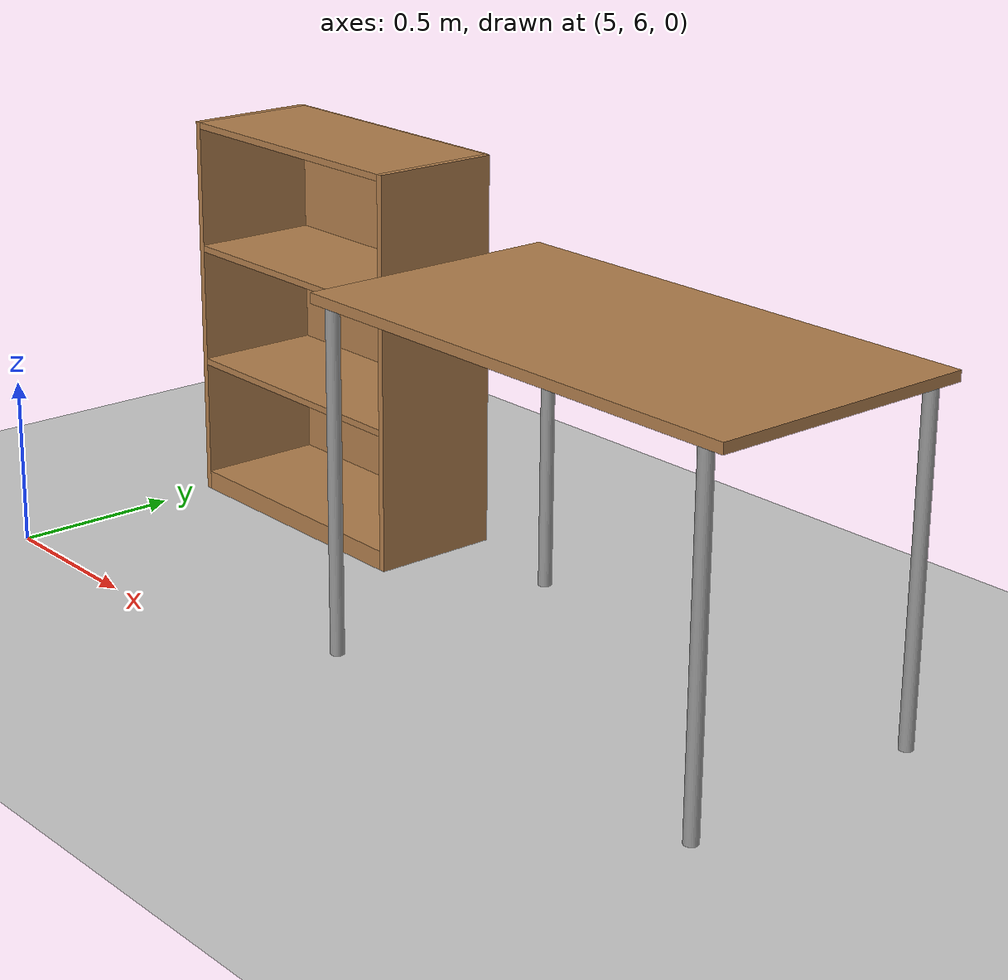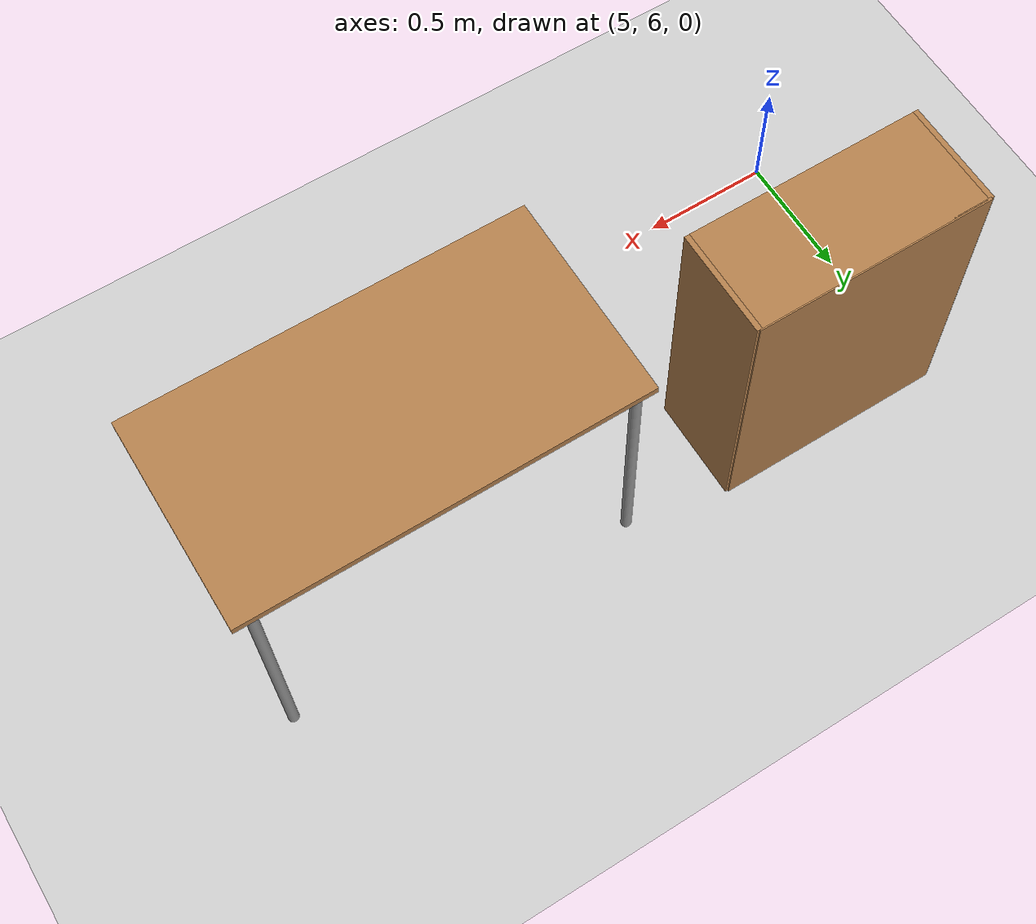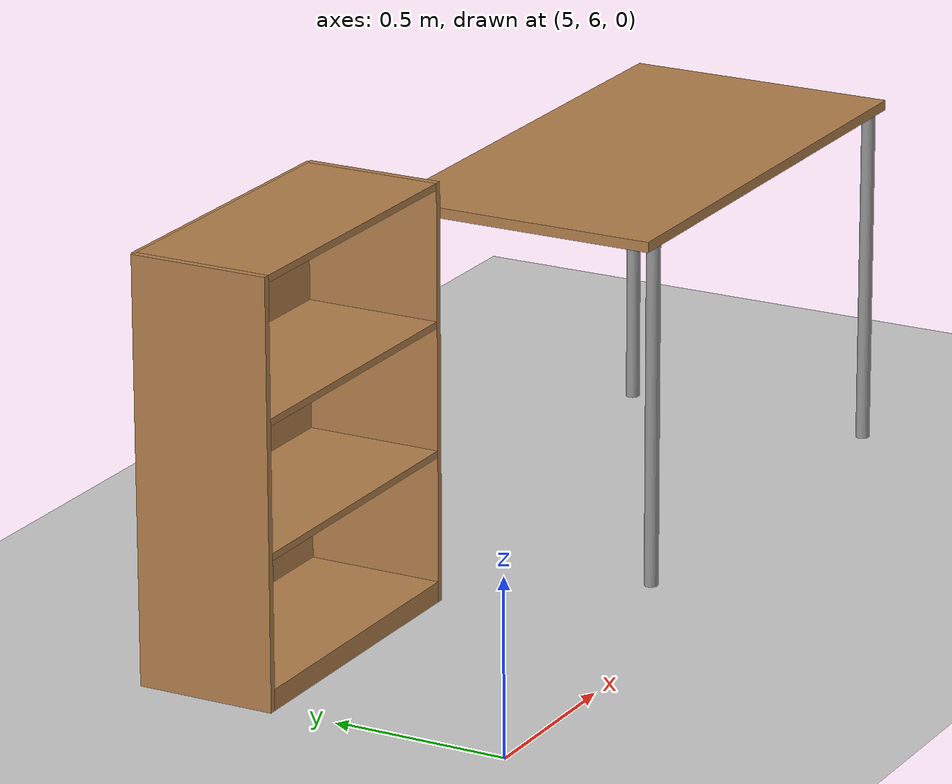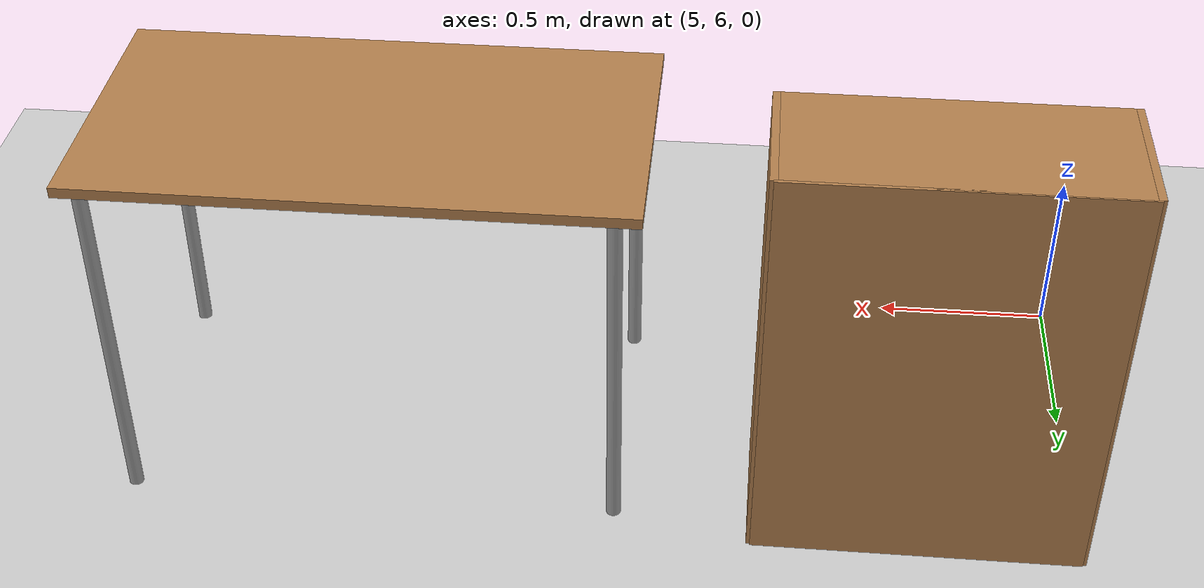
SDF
<sdf version="1.7">
 <world name="default">
  <light name="sun" type="directional">
   <pose>0 0 10 0 -0 0</pose>
   <diffuse>0.8 0.8 0.8 1</diffuse>
   <specular>0.2 0.2 0.2 1</specular>
   <attenuation>
    <range>1000</range>
    <constant>0.9</constant>
    <linear>0.01</linear>
    <quadratic>0.001</quadratic>
   </attenuation>
   <direction>-0.5 0.1 -0.9</direction>
   <spot><inner_angle>0</inner_angle><outer_angle>0</outer_angle><falloff>0</falloff></spot>
  </light>
  <model name="ground_plane">
   <static>1</static>
   <link name="link">
    <collision name="collision">
     <geometry><plane><normal>0 0 1</normal><size>100 100</size></plane></geometry>
     <surface><friction><ode><mu>100</mu><mu2>50</mu2></ode></friction></surface>
    </collision>
    <visual name="visual">
     <cast_shadows>0</cast_shadows>
     <geometry><plane><normal>0 0 1</normal><size>100 100</size></plane></geometry>
     <material>
      <script><uri>file://media/materials/scripts/gazebo.material</uri><name>Gazebo/Grey</name></script>
     </material>
    </visual>
   </link>
  </model>
  <gravity>0 0 -9.8</gravity>
  <magnetic_field>6e-06 2.3e-05 -4.2e-05</magnetic_field>
  <atmosphere type="adiabatic"/>
  <physics type="ode">
   <max_step_size>0.001</max_step_size>
   <real_time_factor>1</real_time_factor>
   <real_time_update_rate>1000</real_time_update_rate>
  </physics>
  <scene><ambient>0.4 0.4 0.4 1</ambient><background>0.7 0.7 0.7 1</background><shadows>1</shadows></scene>
  <audio><device>default</device></audio>
  <spherical_coordinates>
   <surface_model>EARTH_WGS84</surface_model>
   <latitude_deg>0</latitude_deg>
   <longitude_deg>0</longitude_deg>
   <elevation>0</elevation>
   <heading_deg>0</heading_deg>
  </spherical_coordinates>
  <light name="user_spot_light_0" type="spot">
   <pose>-8.86932 4.58256 1 0 -0 0</pose>
   <diffuse>0.5 0.5 0.5 1</diffuse>
   <specular>0.1 0.1 0.1 1</specular>
   <direction>0 0 -1</direction>
   <attenuation>
    <range>20</range>
    <constant>0.5</constant>
    <linear>0.01</linear>
    <quadratic>0.001</quadratic>
   </attenuation>
   <cast_shadows>0</cast_shadows>
   <spot><inner_angle>0.6</inner_angle><outer_angle>1</outer_angle><falloff>1</falloff></spot>
  </light>
  <model name="table">
   <static>1</static>
   <link name="link">
    <collision name="surface">
     <pose>0 0 1 0 -0 0</pose>
     <geometry><box><size>1.5 0.8 0.03</size></box></geometry>
     <surface><friction><ode><mu>0.6</mu><mu2>0.6</mu2></ode></friction></surface>
    </collision>
    <visual name="visual1">
     <pose>0 0 1 0 -0 0</pose>
     <geometry><box><size>1.5 0.8 0.03</size></box></geometry>
     <material>
      <script><uri>file://media/materials/scripts/gazebo.material</uri><name>Gazebo/Wood</name></script>
     </material>
    </visual>
    <collision name="front_left_leg">
     <pose>0.68 0.38 0.5 0 -0 0</pose>
     <geometry><cylinder><radius>0.02</radius><length>1</length></cylinder></geometry>
    </collision>
    <visual name="front_left_leg">
     <pose>0.68 0.38 0.5 0 -0 0</pose>
     <geometry><cylinder><radius>0.02</radius><length>1</length></cylinder></geometry>
     <material>
      <script><uri>file://media/materials/scripts/gazebo.material</uri><name>Gazebo/Grey</name></script>
     </material>
    </visual>
    <collision name="front_right_leg">
     <pose>0.68 -0.38 0.5 0 -0 0</pose>
     <geometry><cylinder><radius>0.02</radius><length>1</length></cylinder></geometry>
    </collision>
    <visual name="front_right_leg">
     <pose>0.68 -0.38 0.5 0 -0 0</pose>
     <geometry><cylinder><radius>0.02</radius><length>1</length></cylinder></geometry>
     <material>
      <script><uri>file://media/materials/scripts/gazebo.material</uri><name>Gazebo/Grey</name></script>
     </material>
    </visual>
    <collision name="back_right_leg">
     <pose>-0.68 -0.38 0.5 0 -0 0</pose>
     <geometry><cylinder><radius>0.02</radius><length>1</length></cylinder></geometry>
    </collision>
    <visual name="back_right_leg">
     <pose>-0.68 -0.38 0.5 0 -0 0</pose>
     <geometry><cylinder><radius>0.02</radius><length>1</length></cylinder></geometry>
     <material>
      <script><uri>file://media/materials/scripts/gazebo.material</uri><name>Gazebo/Grey</name></script>
     </material>
    </visual>
    <collision name="back_left_leg">
     <pose>-0.68 0.38 0.5 0 -0 0</pose>
     <geometry><cylinder><radius>0.02</radius><length>1</length></cylinder></geometry>
    </collision>
    <visual name="back_left_leg">
     <pose>-0.68 0.38 0.5 0 -0 0</pose>
     <geometry><cylinder><radius>0.02</radius><length>1</length></cylinder></geometry>
     <material>
      <script><uri>file://media/materials/scripts/gazebo.material</uri><name>Gazebo/Grey</name></script>
     </material>
    </visual>
   </link>
   <pose>6.94855 6.608 0 0 -0 0</pose>
  </model>
  <model name="bookshelf">
   <static>1</static>
   <link name="link">
    <inertial><mass>1</mass></inertial>
    <collision name="back">
     <pose>0 0.005 0.6 0 -0 0</pose>
     <geometry><box><size>0.9 0.01 1.2</size></box></geometry>
    </collision>
    <visual name="visual1">
     <pose>0 0.005 0.6 0 -0 0</pose>
     <geometry><box><size>0.9 0.01 1.2</size></box></geometry>
     <material>
      <script><uri>file://media/materials/scripts/gazebo.material</uri><name>Gazebo/Wood</name></script>
     </material>
    </visual>
    <collision name="left_side">
     <pose>0.45 -0.195 0.6 0 -0 0</pose>
     <geometry><box><size>0.02 0.4 1.2</size></box></geometry>
    </collision>
    <visual name="visual2">
     <pose>0.45 -0.195 0.6 0 -0 0</pose>
     <geometry><box><size>0.02 0.4 1.2</size></box></geometry>
     <material>
      <script><uri>file://media/materials/scripts/gazebo.material</uri><name>Gazebo/Wood</name></script>
     </material>
    </visual>
    <collision name="right_side">
     <pose>-0.45 -0.195 0.6 0 -0 0</pose>
     <geometry><box><size>0.02 0.4 1.2</size></box></geometry>
    </collision>
    <visual name="visual3">
     <pose>-0.45 -0.195 0.6 0 -0 0</pose>
     <geometry><box><size>0.02 0.4 1.2</size></box></geometry>
     <material>
      <script><uri>file://media/materials/scripts/gazebo.material</uri><name>Gazebo/Wood</name></script>
     </material>
    </visual>
    <collision name="bottom">
     <pose>0 -0.195 0.03 0 -0 0</pose>
     <geometry><box><size>0.88 0.4 0.06</size></box></geometry>
    </collision>
    <visual name="visual4">
     <pose>0 -0.195 0.03 0 -0 0</pose>
     <geometry><box><size>0.88 0.4 0.06</size></box></geometry>
     <material>
      <script><uri>file://media/materials/scripts/gazebo.material</uri><name>Gazebo/Wood</name></script>
     </material>
    </visual>
    <collision name="top">
     <pose>0 -0.195 1.19 0 -0 0</pose>
     <geometry><box><size>0.88 0.4 0.02</size></box></geometry>
    </collision>
    <visual name="visual5">
     <pose>0 -0.195 1.19 0 -0 0</pose>
     <geometry><box><size>0.88 0.4 0.02</size></box></geometry>
     <material>
      <script><uri>file://media/materials/scripts/gazebo.material</uri><name>Gazebo/Wood</name></script>
     </material>
    </visual>
    <collision name="low_shelf">
     <pose>0 -0.195 0.43 0 -0 0</pose>
     <geometry><box><size>0.88 0.4 0.02</size></box></geometry>
    </collision>
    <visual name="visual6">
     <pose>0 -0.195 0.43 0 -0 0</pose>
     <geometry><box><size>0.88 0.4 0.02</size></box></geometry>
     <material>
      <script><uri>file://media/materials/scripts/gazebo.material</uri><name>Gazebo/Wood</name></script>
     </material>
    </visual>
    <collision name="high_shelf">
     <pose>0 -0.195 0.8 0 -0 0</pose>
     <geometry><box><size>0.88 0.4 0.02</size></box></geometry>
    </collision>
    <visual name="visual7">
     <pose>0 -0.195 0.8 0 -0 0</pose>
     <geometry><box><size>0.88 0.4 0.02</size></box></geometry>
     <material>
      <script><uri>file://media/materials/scripts/gazebo.material</uri><name>Gazebo/Wood</name></script>
     </material>
    </visual>
   </link>
   <pose>5.43734 7.07618 0 0 -0 0</pose>
  </model>
 </world>
</sdf>
